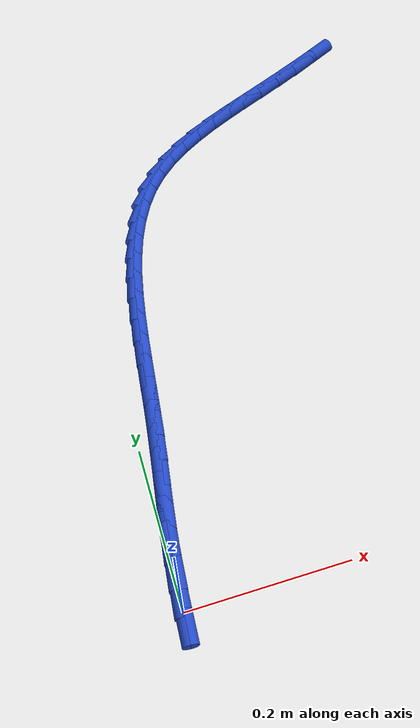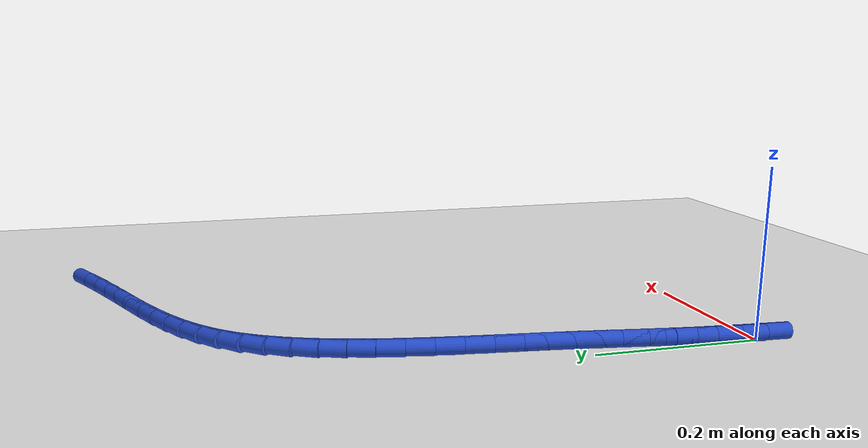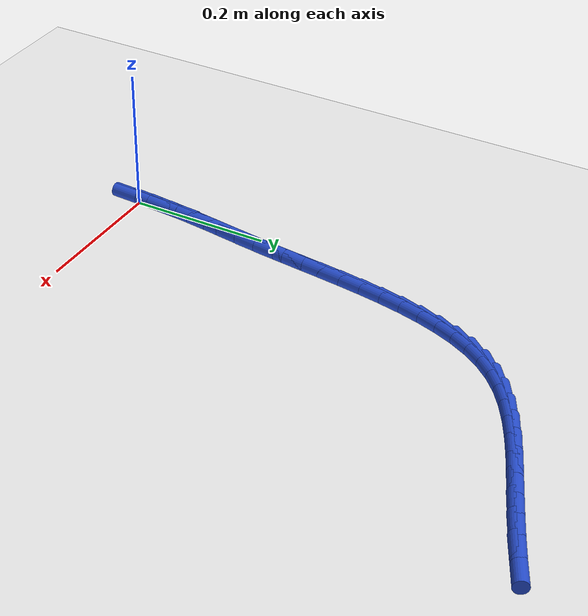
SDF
<sdf version="1.6">
 <world name="default">
  <model name="ground_plane">
   <static>1</static>
   <link name="link">
    <collision name="collision">
     <geometry><plane><normal>0 0 1</normal><size>100 100</size></plane></geometry>
     <surface><friction><ode><mu>100</mu><mu2>50</mu2></ode></friction></surface>
    </collision>
    <visual name="visual">
     <cast_shadows>0</cast_shadows>
     <geometry><plane><normal>0 0 1</normal><size>100 100</size></plane></geometry>
     <material>
      <script><uri>file://media/materials/scripts/gazebo.material</uri><name>Gazebo/WhiteGlow</name></script>
     </material>
    </visual>
   </link>
  </model>
  <model name="line">
   <link name="link_0">
    <pose>3.469446951953614e-18 6.938893903907228e-17 0.01 0 1.57 1.5148359961722635</pose>
    <collision name="collision">
     <geometry><cylinder><radius>0.01</radius><length>0.08</length></cylinder></geometry>
    </collision>
    <visual name="visual">
     <material>
      <script><name>Gazebo/Blue</name><uri>file://media/materials/scripts/gazebo.material</uri></script>
     </material>
     <geometry><cylinder><radius>0.01</radius><length>0.08</length></cylinder></geometry>
    </visual>
   </link>
   <link name="link_1">
    <pose>0.0017094850897031327 0.03051626477430296 0.01 0 1.57 1.4822787442814584</pose>
    <collision name="collision">
     <geometry><cylinder><radius>0.01</radius><length>0.08</length></cylinder></geometry>
    </collision>
    <visual name="visual">
     <material>
      <script><name>Gazebo/Blue</name><uri>file://media/materials/scripts/gazebo.material</uri></script>
     </material>
     <geometry><cylinder><radius>0.01</radius><length>0.08</length></cylinder></geometry>
    </visual>
   </link>
   <link name="link_2">
    <pose>0.004403127142022116 0.0608673326392885 0.01 0 1.57 1.4572416024382149</pose>
    <collision name="collision">
     <geometry><cylinder><radius>0.01</radius><length>0.08</length></cylinder></geometry>
    </collision>
    <visual name="visual">
     <material>
      <script><name>Gazebo/Blue</name><uri>file://media/materials/scripts/gazebo.material</uri></script>
     </material>
     <geometry><cylinder><radius>0.01</radius><length>0.08</length></cylinder></geometry>
    </visual>
   </link>
   <link name="link_3">
    <pose>0.007860565706996987 0.09118368402272538 0.01 0 1.57 1.4399921863272171</pose>
    <collision name="collision">
     <geometry><cylinder><radius>0.01</radius><length>0.08</length></cylinder></geometry>
    </collision>
    <visual name="visual">
     <material>
      <script><name>Gazebo/Blue</name><uri>file://media/materials/scripts/gazebo.material</uri></script>
     </material>
     <geometry><cylinder><radius>0.01</radius><length>0.08</length></cylinder></geometry>
    </visual>
   </link>
   <link name="link_4">
    <pose>0.011861440334667765 0.1215957993523822 0.01 0 1.57 1.4305936068685523</pose>
    <collision name="collision">
     <geometry><cylinder><radius>0.01</radius><length>0.08</length></cylinder></geometry>
    </collision>
    <visual name="visual">
     <material>
      <script><name>Gazebo/Blue</name><uri>file://media/materials/scripts/gazebo.material</uri></script>
     </material>
     <geometry><cylinder><radius>0.01</radius><length>0.08</length></cylinder></geometry>
    </visual>
   </link>
   <link name="link_5">
    <pose>0.016185390575074485 0.15223415905602775 0.01 0 1.57 1.428937334421257</pose>
    <collision name="collision">
     <geometry><cylinder><radius>0.01</radius><length>0.08</length></cylinder></geometry>
    </collision>
    <visual name="visual">
     <material>
      <script><name>Gazebo/Blue</name><uri>file://media/materials/scripts/gazebo.material</uri></script>
     </material>
     <geometry><cylinder><radius>0.01</radius><length>0.08</length></cylinder></geometry>
    </visual>
   </link>
   <link name="link_6">
    <pose>0.02061205597825718 0.18322924356143067 0.01 0 1.57 1.4347703071194566</pose>
    <collision name="collision">
     <geometry><cylinder><radius>0.01</radius><length>0.08</length></cylinder></geometry>
    </collision>
    <visual name="visual">
     <material>
      <script><name>Gazebo/Blue</name><uri>file://media/materials/scripts/gazebo.material</uri></script>
     </material>
     <geometry><cylinder><radius>0.01</radius><length>0.08</length></cylinder></geometry>
    </visual>
   </link>
   <link name="link_7">
    <pose>0.024921076094255874 0.21471153329635967 0.01 0 1.57 1.4473631428586085</pose>
    <collision name="collision">
     <geometry><cylinder><radius>0.01</radius><length>0.08</length></cylinder></geometry>
    </collision>
    <visual name="visual">
     <material>
      <script><name>Gazebo/Blue</name><uri>file://media/materials/scripts/gazebo.material</uri></script>
     </material>
     <geometry><cylinder><radius>0.01</radius><length>0.08</length></cylinder></geometry>
    </visual>
   </link>
   <link name="link_8">
    <pose>0.028902506885221817 0.24680331014053886 0.01 0 1.57 1.458472247931736</pose>
    <collision name="collision">
     <geometry><cylinder><radius>0.01</radius><length>0.08</length></cylinder></geometry>
    </collision>
    <visual name="visual">
     <material>
      <script><name>Gazebo/Blue</name><uri>file://media/materials/scripts/gazebo.material</uri></script>
     </material>
     <geometry><cylinder><radius>0.01</radius><length>0.08</length></cylinder></geometry>
    </visual>
   </link>
   <link name="link_9">
    <pose>0.03258388182388039 0.27943994221114893 0.01 0 1.57 1.4605535143209447</pose>
    <collision name="collision">
     <geometry><cylinder><radius>0.01</radius><length>0.08</length></cylinder></geometry>
    </collision>
    <visual name="visual">
     <material>
      <script><name>Gazebo/Blue</name><uri>file://media/materials/scripts/gazebo.material</uri></script>
     </material>
     <geometry><cylinder><radius>0.01</radius><length>0.08</length></cylinder></geometry>
    </visual>
   </link>
   <link name="link_10">
    <pose>0.0362290510704087 0.31237079752331115 0.01 0 1.57 1.4535501227774712</pose>
    <collision name="collision">
     <geometry><cylinder><radius>0.01</radius><length>0.08</length></cylinder></geometry>
    </collision>
    <visual name="visual">
     <material>
      <script><name>Gazebo/Blue</name><uri>file://media/materials/scripts/gazebo.material</uri></script>
     </material>
     <geometry><cylinder><radius>0.01</radius><length>0.08</length></cylinder></geometry>
    </visual>
   </link>
   <link name="link_11">
    <pose>0.04011204903072314 0.34533722827757507 0.01 0 1.57 1.4373722913775842</pose>
    <collision name="collision">
     <geometry><cylinder><radius>0.01</radius><length>0.08</length></cylinder></geometry>
    </collision>
    <visual name="visual">
     <material>
      <script><name>Gazebo/Blue</name><uri>file://media/materials/scripts/gazebo.material</uri></script>
     </material>
     <geometry><cylinder><radius>0.01</radius><length>0.08</length></cylinder></geometry>
    </visual>
   </link>
   <link name="link_12">
    <pose>0.04450691011074005 0.37808058667448996 0.01 0 1.57 1.4115700109490243</pose>
    <collision name="collision">
     <geometry><cylinder><radius>0.01</radius><length>0.08</length></cylinder></geometry>
    </collision>
    <visual name="visual">
     <material>
      <script><name>Gazebo/Blue</name><uri>file://media/materials/scripts/gazebo.material</uri></script>
     </material>
     <geometry><cylinder><radius>0.01</radius><length>0.08</length></cylinder></geometry>
    </visual>
   </link>
   <link name="link_13">
    <pose>0.04968766871637582 0.41034222491460537 0.01 0 1.57 1.3753404858170684</pose>
    <collision name="collision">
     <geometry><cylinder><radius>0.01</radius><length>0.08</length></cylinder></geometry>
    </collision>
    <visual name="visual">
     <material>
      <script><name>Gazebo/Blue</name><uri>file://media/materials/scripts/gazebo.material</uri></script>
     </material>
     <geometry><cylinder><radius>0.01</radius><length>0.08</length></cylinder></geometry>
    </visual>
   </link>
   <link name="link_14">
    <pose>0.05592835925354684 0.4418634951984708 0.01 0 1.57 1.3275423317986499</pose>
    <collision name="collision">
     <geometry><cylinder><radius>0.01</radius><length>0.08</length></cylinder></geometry>
    </collision>
    <visual name="visual">
     <material>
      <script><name>Gazebo/Blue</name><uri>file://media/materials/scripts/gazebo.material</uri></script>
     </material>
     <geometry><cylinder><radius>0.01</radius><length>0.08</length></cylinder></geometry>
    </visual>
   </link>
   <link name="link_15">
    <pose>0.06350301612816944 0.4723857497266353 0.01 0 1.57 1.2667453190669147</pose>
    <collision name="collision">
     <geometry><cylinder><radius>0.01</radius><length>0.08</length></cylinder></geometry>
    </collision>
    <visual name="visual">
     <material>
      <script><name>Gazebo/Blue</name><uri>file://media/materials/scripts/gazebo.material</uri></script>
     </material>
     <geometry><cylinder><radius>0.01</radius><length>0.08</length></cylinder></geometry>
    </visual>
   </link>
   <link name="link_16">
    <pose>0.07268567374616003 0.5016503406996488 0.01 0 1.57 1.1913659395530691</pose>
    <collision name="collision">
     <geometry><cylinder><radius>0.01</radius><length>0.08</length></cylinder></geometry>
    </collision>
    <visual name="visual">
     <material>
      <script><name>Gazebo/Blue</name><uri>file://media/materials/scripts/gazebo.material</uri></script>
     </material>
     <geometry><cylinder><radius>0.01</radius><length>0.08</length></cylinder></geometry>
    </visual>
   </link>
   <link name="link_17">
    <pose>0.08375036651343498 0.5293986203180603 0.01 0 1.57 1.0999642037363957</pose>
    <collision name="collision">
     <geometry><cylinder><radius>0.01</radius><length>0.08</length></cylinder></geometry>
    </collision>
    <visual name="visual">
     <material>
      <script><name>Gazebo/Blue</name><uri>file://media/materials/scripts/gazebo.material</uri></script>
     </material>
     <geometry><cylinder><radius>0.01</radius><length>0.08</length></cylinder></geometry>
    </visual>
   </link>
   <link name="link_18">
    <pose>0.0969711288359106 0.5553719407824192 0.01 0 1.57 0.9917812656120157</pose>
    <collision name="collision">
     <geometry><cylinder><radius>0.01</radius><length>0.08</length></cylinder></geometry>
    </collision>
    <visual name="visual">
     <material>
      <script><name>Gazebo/Blue</name><uri>file://media/materials/scripts/gazebo.material</uri></script>
     </material>
     <geometry><cylinder><radius>0.01</radius><length>0.08</length></cylinder></geometry>
    </visual>
   </link>
   <link name="link_19">
    <pose>0.11262199511950335 0.5793116542932754 0.01 0 1.57 0.8679224436490507</pose>
    <collision name="collision">
     <geometry><cylinder><radius>0.01</radius><length>0.08</length></cylinder></geometry>
    </collision>
    <visual name="visual">
     <material>
      <script><name>Gazebo/Blue</name><uri>file://media/materials/scripts/gazebo.material</uri></script>
     </material>
     <geometry><cylinder><radius>0.01</radius><length>0.08</length></cylinder></geometry>
    </visual>
   </link>
   <link name="link_20">
    <pose>0.1309692275656516 0.6009676379139176 0.01 0 1.57 0.7444854785448493</pose>
    <collision name="collision">
     <geometry><cylinder><radius>0.01</radius><length>0.08</length></cylinder></geometry>
    </collision>
    <visual name="visual">
     <material>
      <script><name>Gazebo/Blue</name><uri>file://media/materials/scripts/gazebo.material</uri></script>
     </material>
     <geometry><cylinder><radius>0.01</radius><length>0.08</length></cylinder></geometry>
    </visual>
   </link>
   <link name="link_21">
    <pose>0.15202555442540144 0.6203678548199021 0.01 0 1.57 0.64076058064986</pose>
    <collision name="collision">
     <geometry><cylinder><radius>0.01</radius><length>0.08</length></cylinder></geometry>
    </collision>
    <visual name="visual">
     <material>
      <script><name>Gazebo/Blue</name><uri>file://media/materials/scripts/gazebo.material</uri></script>
     </material>
     <geometry><cylinder><radius>0.01</radius><length>0.08</length></cylinder></geometry>
    </visual>
   </link>
   <link name="link_22">
    <pose>0.17550000388395723 0.6378733784880832 0.01 0 1.57 0.5586481810111097</pose>
    <collision name="collision">
     <geometry><cylinder><radius>0.01</radius><length>0.08</length></cylinder></geometry>
    </collision>
    <visual name="visual">
     <material>
      <script><name>Gazebo/Blue</name><uri>file://media/materials/scripts/gazebo.material</uri></script>
     </material>
     <geometry><cylinder><radius>0.01</radius><length>0.08</length></cylinder></geometry>
    </visual>
   </link>
   <link name="link_23">
    <pose>0.20108369606787138 0.6538649246657148 0.01 0 1.57 0.49713551053261557</pose>
    <collision name="collision">
     <geometry><cylinder><radius>0.01</radius><length>0.08</length></cylinder></geometry>
    </collision>
    <visual name="visual">
     <material>
      <script><name>Gazebo/Blue</name><uri>file://media/materials/scripts/gazebo.material</uri></script>
     </material>
     <geometry><cylinder><radius>0.01</radius><length>0.08</length></cylinder></geometry>
    </visual>
   </link>
   <link name="link_24">
    <pose>0.22846775110369635 0.6687232091000502 0.01 0 1.57 0.45440642235736683</pose>
    <collision name="collision">
     <geometry><cylinder><radius>0.01</radius><length>0.08</length></cylinder></geometry>
    </collision>
    <visual name="visual">
     <material>
      <script><name>Gazebo/Blue</name><uri>file://media/materials/scripts/gazebo.material</uri></script>
     </material>
     <geometry><cylinder><radius>0.01</radius><length>0.08</length></cylinder></geometry>
    </visual>
   </link>
   <link name="link_25">
    <pose>0.25734328911798443 0.6828289475383432 0.01 0 1.57 0.42858658572058783</pose>
    <collision name="collision">
     <geometry><cylinder><radius>0.01</radius><length>0.08</length></cylinder></geometry>
    </collision>
    <visual name="visual">
     <material>
      <script><name>Gazebo/Blue</name><uri>file://media/materials/scripts/gazebo.material</uri></script>
     </material>
     <geometry><cylinder><radius>0.01</radius><length>0.08</length></cylinder></geometry>
    </visual>
   </link>
   <link name="link_26">
    <pose>0.2874014302372878 0.6965628557278467 0.01 0 1.57 0.41809739632010245</pose>
    <collision name="collision">
     <geometry><cylinder><radius>0.01</radius><length>0.08</length></cylinder></geometry>
    </collision>
    <visual name="visual">
     <material>
      <script><name>Gazebo/Blue</name><uri>file://media/materials/scripts/gazebo.material</uri></script>
     </material>
     <geometry><cylinder><radius>0.01</radius><length>0.08</length></cylinder></geometry>
    </visual>
   </link>
   <link name="link_27">
    <pose>0.3183332945881591 0.7103056494158148 0.01 0 1.57 0.42150549893042916</pose>
    <collision name="collision">
     <geometry><cylinder><radius>0.01</radius><length>0.08</length></cylinder></geometry>
    </collision>
    <visual name="visual">
     <material>
      <script><name>Gazebo/Blue</name><uri>file://media/materials/scripts/gazebo.material</uri></script>
     </material>
     <geometry><cylinder><radius>0.01</radius><length>0.08</length></cylinder></geometry>
    </visual>
   </link>
   <link name="link_28">
    <pose>0.34983224440703614 0.7244291327424857 0.01 0 1.57 0.4329973155200589</pose>
    <collision name="collision">
     <geometry><cylinder><radius>0.01</radius><length>0.08</length></cylinder></geometry>
    </collision>
    <visual name="visual">
     <material>
      <script><name>Gazebo/Blue</name><uri>file://media/materials/scripts/gazebo.material</uri></script>
     </material>
     <geometry><cylinder><radius>0.01</radius><length>0.08</length></cylinder></geometry>
    </visual>
   </link>
   <link name="link_29">
    <pose>0.38163560851254097 0.7391303579749843 0.01 0 1.57 0.4478171561913903</pose>
    <collision name="collision">
     <geometry><cylinder><radius>0.01</radius><length>0.08</length></cylinder></geometry>
    </collision>
    <visual name="visual">
     <material>
      <script><name>Gazebo/Blue</name><uri>file://media/materials/scripts/gazebo.material</uri></script>
     </material>
     <geometry><cylinder><radius>0.01</radius><length>0.08</length></cylinder></geometry>
    </visual>
   </link>
   <link name="link_30">
    <pose>0.4135208327494134 0.754446926153856 0.01 0 1.57 0.46592984751644967</pose>
    <collision name="collision">
     <geometry><cylinder><radius>0.01</radius><length>0.08</length></cylinder></geometry>
    </collision>
    <visual name="visual">
     <material>
      <script><name>Gazebo/Blue</name><uri>file://media/materials/scripts/gazebo.material</uri></script>
     </material>
     <geometry><cylinder><radius>0.01</radius><length>0.08</length></cylinder></geometry>
    </visual>
   </link>
   <link name="link_270">
    <pose>6.071532165918825e-18 -2.0816681711721685e-17 0.01 0 1.57 1.5136922882602284</pose>
    <collision name="collision">
     <geometry><cylinder><radius>0.01</radius><length>0.08</length></cylinder></geometry>
    </collision>
    <visual name="visual">
     <material>
      <script><name>Gazebo/Blue</name><uri>file://media/materials/scripts/gazebo.material</uri></script>
     </material>
     <geometry><cylinder><radius>0.01</radius><length>0.08</length></cylinder></geometry>
    </visual>
   </link>
   <link name="link_271">
    <pose>0.0017422443028763633 0.03047683125321002 0.01 0 1.57 1.4739118032308283</pose>
    <collision name="collision">
     <geometry><cylinder><radius>0.01</radius><length>0.08</length></cylinder></geometry>
    </collision>
    <visual name="visual">
     <material>
      <script><name>Gazebo/Blue</name><uri>file://media/materials/scripts/gazebo.material</uri></script>
     </material>
     <geometry><cylinder><radius>0.01</radius><length>0.08</length></cylinder></geometry>
    </visual>
   </link>
   <link name="link_272">
    <pose>0.0046652008474077624 0.060551864470542435 0.01 0 1.57 1.4939035189092236</pose>
    <collision name="collision">
     <geometry><cylinder><radius>0.01</radius><length>0.08</length></cylinder></geometry>
    </collision>
    <visual name="visual">
     <material>
      <script><name>Gazebo/Blue</name><uri>file://media/materials/scripts/gazebo.material</uri></script>
     </material>
     <geometry><cylinder><radius>0.01</radius><length>0.08</length></cylinder></geometry>
    </visual>
   </link>
  </model>
 </world>
</sdf>
